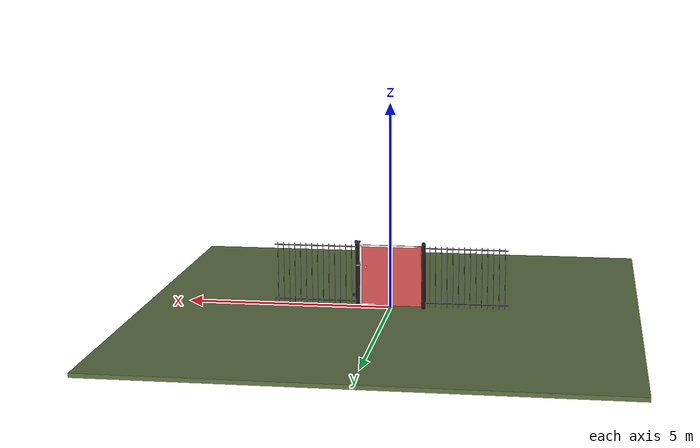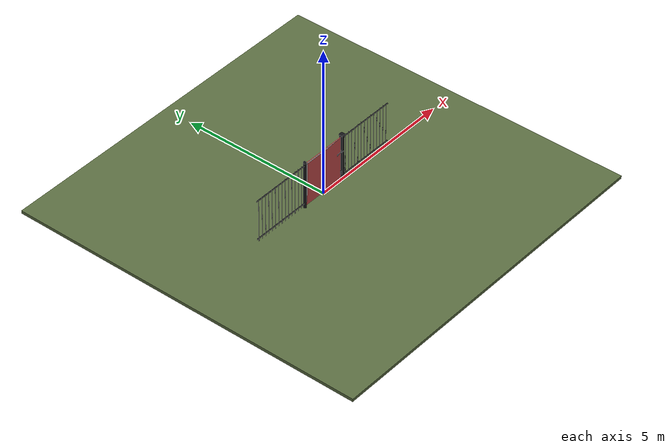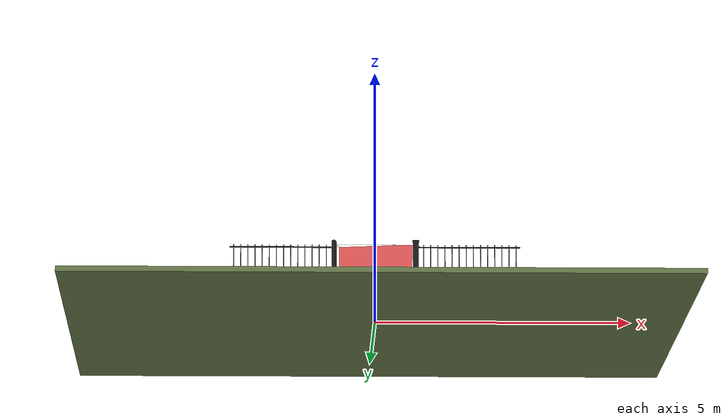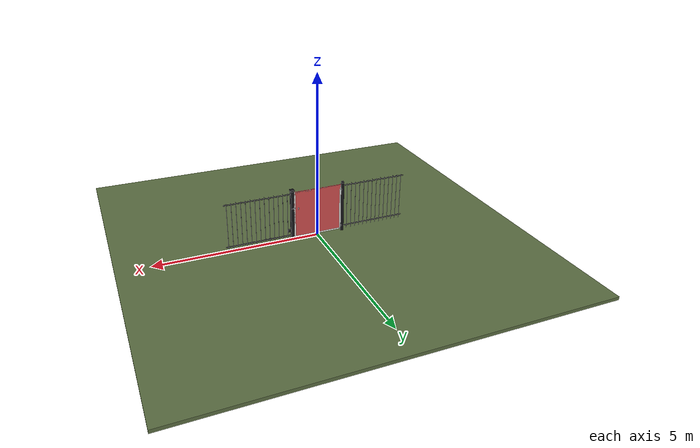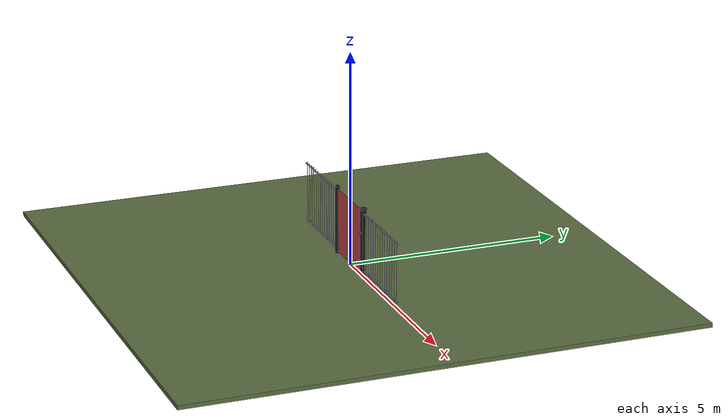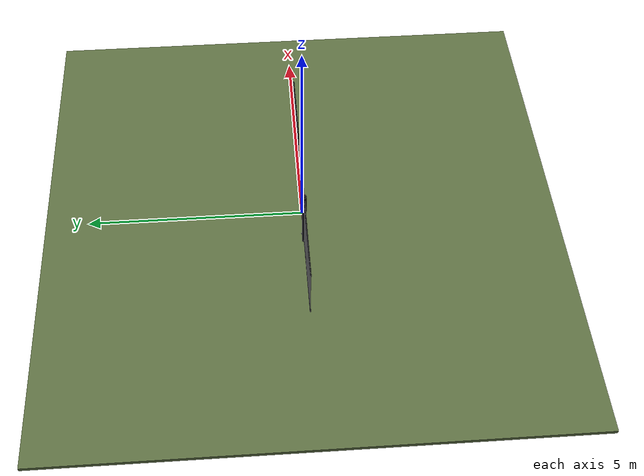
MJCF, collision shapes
<?xml version="1.0" ?>
<mujoco model="db0434_gate_swing_full">
  <compiler angle="radian" meshdir="../../hardware" texturedir="../../textures" autolimits="true" inertiafromgeom="false"/>
  <option timestep="0.002" integrator="implicitfast" cone="elliptic" impratio="10" noslip_iterations="3">
    <flag multiccd="enable"/>
  </option>
  <size memory="16M"/>
  <default>
    <geom condim="4" solref="0.005 1" solimp="0.95 0.99 0.001"/>
    <joint solreflimit="0.005 1" solimplimit="0.95 0.99 0.001"/>
    <tendon solreflimit="0.005 1"/>
    <equality solref="0.002 1"/>
  </default>
  <visual>
    <headlight ambient="0.4 0.4 0.4" diffuse="0.7 0.7 0.7" specular="0.2 0.2 0.2"/>
    <quality shadowsize="4096"/>
    <map znear="0.01" zfar="60"/>
  </visual>
  <asset>
    <mesh name="strap_hinge_78d1bbb966" file="strap_hinge_78d1bbb966.obj"/>
    <material name="mat_floor" rgba="0.35 0.42 0.25 1" specular="0.2" shininess="0.15" reflectance="0"/>
    <material name="mat_wall" rgba="0.78 0.76 0.7 1" specular="0.2" shininess="0.1" reflectance="0"/>
    <material name="mat_leaf" rgba="0.93 0.93 0.91 1" specular="0.23" shininess="0.54" reflectance="0.02"/>
    <material name="mat_hinge" rgba="0.65 0.66 0.68 1" specular="0.74" shininess="0.5" reflectance="0.36"/>
    <material name="mat_op_steel_galvanized" rgba="0.65 0.66 0.68 1" specular="0.74" shininess="0.5" reflectance="0.36"/>
    <material name="mat_frame" rgba="0.08 0.08 0.09 1" specular="0.56" shininess="0.25" reflectance="0.24"/>
    <texture name="skybox" type="skybox" builtin="gradient" rgb1="0.6 0.7 0.85" rgb2="0.9 0.92 0.95" width="256" height="256"/>
  </asset>
  <worldbody>
    <light name="sun" pos="1.5 -2.5 4" dir="-0.3 0.5 -0.8" directional="true" diffuse="0.8 0.8 0.8" specular="0.3 0.3 0.3" castshadow="true"/>
    <light name="fill" pos="-1.5 2.5 3" dir="0.3 -0.5 -0.7" directional="true" diffuse="0.35 0.35 0.4" castshadow="false"/>
    <camera name="robot_view" pos="0 -2.05 1.334" xyaxes="1 0 0 0 0.26963 0.962964" fovy="52"/>
    <camera name="far_view" pos="0 2.05 1.334" xyaxes="-1 0 0 0 -0.26963 0.962964" fovy="52"/>
    <camera name="iso" pos="1.558 -1.722 1.662" xyaxes="0.741536 0.670913 0 -0.242917 0.268487 0.932151" fovy="46"/>
    <camera name="detail_handle" pos="0.916 -0.8245 1.385" xyaxes="0.97561 0.219512 0 -0.070934 0.315262 0.94635" fovy="38"/>
    <geom name="floor" type="box" size="6 6 0.05" pos="0 0 -0.05" material="mat_floor" group="0" contype="1" conaffinity="1" friction="0.8 0.005 0.0001" density="2400"/>
    <geom name="hinge_pintle_0" type="cylinder" size="0.008 0.02" pos="-0.753 0.05 0.174" material="mat_hinge" group="1" contype="0" conaffinity="0" density="7850"/>
    <geom name="hinge_pintle_1" type="cylinder" size="0.008 0.02" pos="-0.753 0.05 1.374" material="mat_hinge" group="1" contype="0" conaffinity="0" density="7850"/>
    <geom name="post_hinge" type="cylinder" size="0.05 0.8" pos="-0.806 0 0.8" material="mat_frame" group="0" contype="1" conaffinity="1" friction="0.6 0.005 0.0001" density="800"/>
    <geom name="post_hinge_cap" type="sphere" size="0.05" pos="-0.806 0 1.6" material="mat_frame" group="1" contype="0" conaffinity="0" density="800"/>
    <geom name="post_latch" type="box" size="0.05 0.05 0.8" pos="0.806 0 0.8" material="mat_frame" group="0" contype="1" conaffinity="1" friction="0.6 0.005 0.0001" density="800"/>
    <geom name="post_latch_cap" type="box" size="0.065 0.065 0.02" pos="0.806 0 1.62" material="mat_frame" group="1" contype="0" conaffinity="0" density="800"/>
    <geom name="gate_stop" type="box" size="0.02 0.012 0.06" pos="0.736 -0.0245 0.3" material="mat_frame" group="0" contype="1" conaffinity="1" friction="0.6 0.005 0.0001" density="800"/>
    <geom name="fence_bar_l_0" type="cylinder" size="0.008 0.75" pos="-0.956 0 0.8" material="mat_frame" group="0" contype="1" conaffinity="1" friction="0.6 0.005 0.0001" density="7850"/>
    <geom name="fence_bar_l_1" type="cylinder" size="0.008 0.75" pos="-1.096 0 0.8" material="mat_frame" group="0" contype="1" conaffinity="1" friction="0.6 0.005 0.0001" density="7850"/>
    <geom name="fence_bar_l_2" type="cylinder" size="0.008 0.75" pos="-1.236 0 0.8" material="mat_frame" group="0" contype="1" conaffinity="1" friction="0.6 0.005 0.0001" density="7850"/>
    <geom name="fence_bar_l_3" type="cylinder" size="0.008 0.75" pos="-1.376 0 0.8" material="mat_frame" group="0" contype="1" conaffinity="1" friction="0.6 0.005 0.0001" density="7850"/>
    <geom name="fence_bar_l_4" type="cylinder" size="0.008 0.75" pos="-1.516 0 0.8" material="mat_frame" group="0" contype="1" conaffinity="1" friction="0.6 0.005 0.0001" density="7850"/>
    <geom name="fence_bar_l_5" type="cylinder" size="0.008 0.75" pos="-1.656 0 0.8" material="mat_frame" group="0" contype="1" conaffinity="1" friction="0.6 0.005 0.0001" density="7850"/>
    <geom name="fence_bar_l_6" type="cylinder" size="0.008 0.75" pos="-1.796 0 0.8" material="mat_frame" group="0" contype="1" conaffinity="1" friction="0.6 0.005 0.0001" density="7850"/>
    <geom name="fence_bar_l_7" type="cylinder" size="0.008 0.75" pos="-1.936 0 0.8" material="mat_frame" group="0" contype="1" conaffinity="1" friction="0.6 0.005 0.0001" density="7850"/>
    <geom name="fence_bar_l_8" type="cylinder" size="0.008 0.75" pos="-2.076 0 0.8" material="mat_frame" group="0" contype="1" conaffinity="1" friction="0.6 0.005 0.0001" density="7850"/>
    <geom name="fence_bar_l_9" type="cylinder" size="0.008 0.75" pos="-2.216 0 0.8" material="mat_frame" group="0" contype="1" conaffinity="1" friction="0.6 0.005 0.0001" density="7850"/>
    <geom name="fence_bar_l_10" type="cylinder" size="0.008 0.75" pos="-2.356 0 0.8" material="mat_frame" group="0" contype="1" conaffinity="1" friction="0.6 0.005 0.0001" density="7850"/>
    <geom name="fence_bar_l_11" type="cylinder" size="0.008 0.75" pos="-2.496 0 0.8" material="mat_frame" group="0" contype="1" conaffinity="1" friction="0.6 0.005 0.0001" density="7850"/>
    <geom name="fence_bar_l_12" type="cylinder" size="0.008 0.75" pos="-2.636 0 0.8" material="mat_frame" group="0" contype="1" conaffinity="1" friction="0.6 0.005 0.0001" density="7850"/>
    <geom name="fence_bar_l_13" type="cylinder" size="0.008 0.75" pos="-2.776 0 0.8" material="mat_frame" group="0" contype="1" conaffinity="1" friction="0.6 0.005 0.0001" density="7850"/>
    <geom name="fence_rail_l" type="box" size="1 0.012 0.012" pos="-1.856 0 1.5" material="mat_frame" group="0" contype="1" conaffinity="1" friction="0.6 0.005 0.0001" density="7850"/>
    <geom name="fence_rail_b_l" type="box" size="1 0.012 0.012" pos="-1.856 0 0.15" material="mat_frame" group="0" contype="1" conaffinity="1" friction="0.6 0.005 0.0001" density="7850"/>
    <geom name="fence_bar_r_0" type="cylinder" size="0.008 0.75" pos="0.956 0 0.8" material="mat_frame" group="0" contype="1" conaffinity="1" friction="0.6 0.005 0.0001" density="7850"/>
    <geom name="fence_bar_r_1" type="cylinder" size="0.008 0.75" pos="1.096 0 0.8" material="mat_frame" group="0" contype="1" conaffinity="1" friction="0.6 0.005 0.0001" density="7850"/>
    <geom name="fence_bar_r_2" type="cylinder" size="0.008 0.75" pos="1.236 0 0.8" material="mat_frame" group="0" contype="1" conaffinity="1" friction="0.6 0.005 0.0001" density="7850"/>
    <geom name="fence_bar_r_3" type="cylinder" size="0.008 0.75" pos="1.376 0 0.8" material="mat_frame" group="0" contype="1" conaffinity="1" friction="0.6 0.005 0.0001" density="7850"/>
    <geom name="fence_bar_r_4" type="cylinder" size="0.008 0.75" pos="1.516 0 0.8" material="mat_frame" group="0" contype="1" conaffinity="1" friction="0.6 0.005 0.0001" density="7850"/>
    <geom name="fence_bar_r_5" type="cylinder" size="0.008 0.75" pos="1.656 0 0.8" material="mat_frame" group="0" contype="1" conaffinity="1" friction="0.6 0.005 0.0001" density="7850"/>
    <geom name="fence_bar_r_6" type="cylinder" size="0.008 0.75" pos="1.796 0 0.8" material="mat_frame" group="0" contype="1" conaffinity="1" friction="0.6 0.005 0.0001" density="7850"/>
    <geom name="fence_bar_r_7" type="cylinder" size="0.008 0.75" pos="1.936 0 0.8" material="mat_frame" group="0" contype="1" conaffinity="1" friction="0.6 0.005 0.0001" density="7850"/>
    <geom name="fence_bar_r_8" type="cylinder" size="0.008 0.75" pos="2.076 0 0.8" material="mat_frame" group="0" contype="1" conaffinity="1" friction="0.6 0.005 0.0001" density="7850"/>
    <geom name="fence_bar_r_9" type="cylinder" size="0.008 0.75" pos="2.216 0 0.8" material="mat_frame" group="0" contype="1" conaffinity="1" friction="0.6 0.005 0.0001" density="7850"/>
    <geom name="fence_bar_r_10" type="cylinder" size="0.008 0.75" pos="2.356 0 0.8" material="mat_frame" group="0" contype="1" conaffinity="1" friction="0.6 0.005 0.0001" density="7850"/>
    <geom name="fence_bar_r_11" type="cylinder" size="0.008 0.75" pos="2.496 0 0.8" material="mat_frame" group="0" contype="1" conaffinity="1" friction="0.6 0.005 0.0001" density="7850"/>
    <geom name="fence_bar_r_12" type="cylinder" size="0.008 0.75" pos="2.636 0 0.8" material="mat_frame" group="0" contype="1" conaffinity="1" friction="0.6 0.005 0.0001" density="7850"/>
    <geom name="fence_bar_r_13" type="cylinder" size="0.008 0.75" pos="2.776 0 0.8" material="mat_frame" group="0" contype="1" conaffinity="1" friction="0.6 0.005 0.0001" density="7850"/>
    <geom name="fence_rail_r" type="box" size="1 0.012 0.012" pos="1.856 0 1.5" material="mat_frame" group="0" contype="1" conaffinity="1" friction="0.6 0.005 0.0001" density="7850"/>
    <geom name="fence_rail_b_r" type="box" size="1 0.012 0.012" pos="1.856 0 0.15" material="mat_frame" group="0" contype="1" conaffinity="1" friction="0.6 0.005 0.0001" density="7850"/>
    <geom name="gate_stop_strap_0" type="box" size="0.0965 0.01505 0.048" pos="0.852 -0.01905 0.3" material="mat_frame" group="1" contype="0" conaffinity="0" density="7850"/>
    <site name="approach_point" pos="0 -1.5 0" quat="1 0 0 0" size="0.05" rgba="0.2 0.9 0.2 0.5" group="4"/>
    <site name="goal_point" pos="0 1.5 0" quat="1 0 0 0" size="0.05" rgba="0.2 0.9 0.2 0.5" group="4"/>
    <site name="door_plane_center" pos="0 0 0.76" quat="1 0 0 0" size="0.02" rgba="0.2 0.9 0.2 0.5" group="4"/>
    <body name="leaf" pos="-0.756 0 0">
      <inertial pos="0.734689 0.000622 0.800549" mass="65.199237" quat="0.703751 -0.703889 -0.067379 -0.06881" diaginertia="12.56269071 12.682157868 25.236257004"/>
      <joint name="leaf_hinge" type="hinge" axis="0 0 1" pos="0.003 0.05 0" limited="true" range="0 1.570796" damping="1.421431" frictionloss="8.499144" armature="0.02"/>
      <geom name="leaf_slab_col" type="box" size="0.75 0.0125 0.75" pos="0.753 0 0.8" material="mat_leaf" group="3" contype="1" conaffinity="1" rgba="0.8 0.3 0.3 0.25" friction="0.45 0.005 0.0001" density="1"/>
      <geom name="leaf_rail_b" type="box" size="0.75 0.0125 0.0225" pos="0.753 0 0.0725" material="mat_leaf" group="1" contype="0" conaffinity="0" density="1"/>
      <geom name="leaf_rail_t" type="box" size="0.75 0.0125 0.0225" pos="0.753 0 1.5275" material="mat_leaf" group="1" contype="0" conaffinity="0" density="1"/>
      <geom name="leaf_stile_h" type="box" size="0.0225 0.0125 0.75" pos="0.0255 0 0.8" material="mat_leaf" group="1" contype="0" conaffinity="0" density="1"/>
      <geom name="leaf_stile_l" type="box" size="0.0225 0.0125 0.75" pos="1.4805 0 0.8" material="mat_leaf" group="1" contype="0" conaffinity="0" density="1"/>
      <geom name="leaf_bar_0" type="cylinder" size="0.0095 0.705" pos="0.112091 0 0.8" material="mat_leaf" group="1" contype="0" conaffinity="0" density="1"/>
      <geom name="leaf_bar_1" type="cylinder" size="0.0095 0.705" pos="0.240273 0 0.8" material="mat_leaf" group="1" contype="0" conaffinity="0" density="1"/>
      <geom name="leaf_bar_2" type="cylinder" size="0.0095 0.705" pos="0.368455 0 0.8" material="mat_leaf" group="1" contype="0" conaffinity="0" density="1"/>
      <geom name="leaf_bar_3" type="cylinder" size="0.0095 0.705" pos="0.496636 0 0.8" material="mat_leaf" group="1" contype="0" conaffinity="0" density="1"/>
      <geom name="leaf_bar_4" type="cylinder" size="0.0095 0.705" pos="0.624818 0 0.8" material="mat_leaf" group="1" contype="0" conaffinity="0" density="1"/>
      <geom name="leaf_bar_5" type="cylinder" size="0.0095 0.705" pos="0.753 0 0.8" material="mat_leaf" group="1" contype="0" conaffinity="0" density="1"/>
      <geom name="leaf_bar_6" type="cylinder" size="0.0095 0.705" pos="0.881182 0 0.8" material="mat_leaf" group="1" contype="0" conaffinity="0" density="1"/>
      <geom name="leaf_bar_7" type="cylinder" size="0.0095 0.705" pos="1.009364 0 0.8" material="mat_leaf" group="1" contype="0" conaffinity="0" density="1"/>
      <geom name="leaf_bar_8" type="cylinder" size="0.0095 0.705" pos="1.137545 0 0.8" material="mat_leaf" group="1" contype="0" conaffinity="0" density="1"/>
      <geom name="leaf_bar_9" type="cylinder" size="0.0095 0.705" pos="1.265727 0 0.8" material="mat_leaf" group="1" contype="0" conaffinity="0" density="1"/>
      <geom name="leaf_bar_10" type="cylinder" size="0.0095 0.705" pos="1.393909 0 0.8" material="mat_leaf" group="1" contype="0" conaffinity="0" density="1"/>
      <geom name="hinge_strap_0" type="mesh" mesh="strap_hinge_78d1bbb966" pos="0.003 0.0155 0.2" material="mat_hinge" group="1" contype="0" conaffinity="0" density="7850"/>
      <geom name="hinge_strap_eye_0" type="cylinder" size="0.011 0.012" pos="0.003 0.05 0.2" material="mat_hinge" group="1" contype="0" conaffinity="0" density="7850"/>
      <geom name="hinge_strap_neck_0" type="box" size="0.012 0.02125 0.006" pos="0.003 0.03275 0.2" material="mat_hinge" group="1" contype="0" conaffinity="0" density="7850"/>
      <geom name="hinge_strap_1" type="mesh" mesh="strap_hinge_78d1bbb966" pos="0.003 0.0155 1.4" material="mat_hinge" group="1" contype="0" conaffinity="0" density="7850"/>
      <geom name="hinge_strap_eye_1" type="cylinder" size="0.011 0.012" pos="0.003 0.05 1.4" material="mat_hinge" group="1" contype="0" conaffinity="0" density="7850"/>
      <geom name="hinge_strap_neck_1" type="box" size="0.012 0.02125 0.006" pos="0.003 0.03275 1.4" material="mat_hinge" group="1" contype="0" conaffinity="0" density="7850"/>
      <geom name="leaf_fork_strap_n" type="box" size="0.02 0.002 0.03" pos="1.363 -0.0145 1" material="mat_op_steel_galvanized" group="1" contype="0" conaffinity="0" density="7800"/>
      <geom name="leaf_fork_strap_p" type="box" size="0.02 0.002 0.03" pos="1.363 0.0145 1" material="mat_op_steel_galvanized" group="1" contype="0" conaffinity="0" density="7800"/>
      <geom name="leaf_fork_pin" type="cylinder" size="0.005 0.0245" pos="1.363 -0.008 1" quat="0.707107 -0.707107 0 0" material="mat_op_steel_galvanized" group="1" contype="0" conaffinity="0" density="7800"/>
      <site name="leaf_edge_mid" pos="1.503 0 0.75" quat="1 0 0 0" size="0.02" rgba="0.2 0.9 0.2 0.5" group="4"/>
      <body name="leaf_fork" pos="1.363 0 1">
        <inertial pos="0.117177 -0.010227 0.04089" mass="0.225763" quat="0.98476 -0.02305 -0.132031 0.110834" diaginertia="0.000369957 0.000962486 0.001254335"/>
        <joint name="leaf_fork_hinge" type="hinge" axis="0 -1 0" limited="true" range="0 1.2" damping="0.037477" frictionloss="0.006367" armature="0.0001"/>
        <geom name="leaf_fork_arm" type="box" size="0.069176 0.004 0.012" pos="0.0645 -0.0245 0.025" quat="0.982958 0 -0.183833 0" material="mat_op_steel_galvanized" group="0" contype="1" conaffinity="1" friction="0.6 0.005 0.0001" density="2500"/>
        <geom name="leaf_fork_eye" type="cylinder" size="0.014 0.005" pos="0 -0.0245 0" quat="0.707107 -0.707107 0 0" material="mat_op_steel_galvanized" group="1" contype="0" conaffinity="0" density="2500"/>
        <geom name="leaf_fork_tine_n" type="box" size="0.05 0.003 0.012" pos="0.179 -0.059 0.05" material="mat_op_steel_galvanized" group="0" contype="1" conaffinity="1" friction="0.6 0.005 0.0001" density="2500"/>
        <geom name="leaf_fork_tine_p" type="box" size="0.05 0.003 0.012" pos="0.179 0.059 0.05" material="mat_op_steel_galvanized" group="0" contype="1" conaffinity="1" friction="0.6 0.005 0.0001" density="2500"/>
        <geom name="leaf_fork_bridge" type="box" size="0.004 0.062 0.012" pos="0.129 0 0.05" material="mat_op_steel_galvanized" group="0" contype="1" conaffinity="1" friction="0.6 0.005 0.0001" density="2500"/>
        <geom name="leaf_fork_handle" type="capsule" size="0.006 0.018" pos="0.129 -0.0245 0.08" material="mat_op_steel_galvanized" group="0" contype="1" conaffinity="1" friction="0.7 0.01 0.0001" density="2500"/>
        <site name="leaf_fork_grip" pos="0.129 -0.0245 0.105" quat="1 0 0 0" size="0.012" rgba="0.2 0.9 0.2 0.5" group="4"/>
      </body>
    </body>
  </worldbody>
  <sensor>
    <jointpos name="leaf_hinge_pos" joint="leaf_hinge"/>
    <jointvel name="leaf_hinge_vel" joint="leaf_hinge"/>
    <jointpos name="leaf_fork_hinge_pos" joint="leaf_fork_hinge"/>
    <jointvel name="leaf_fork_hinge_vel" joint="leaf_fork_hinge"/>
  </sensor>
</mujoco>
